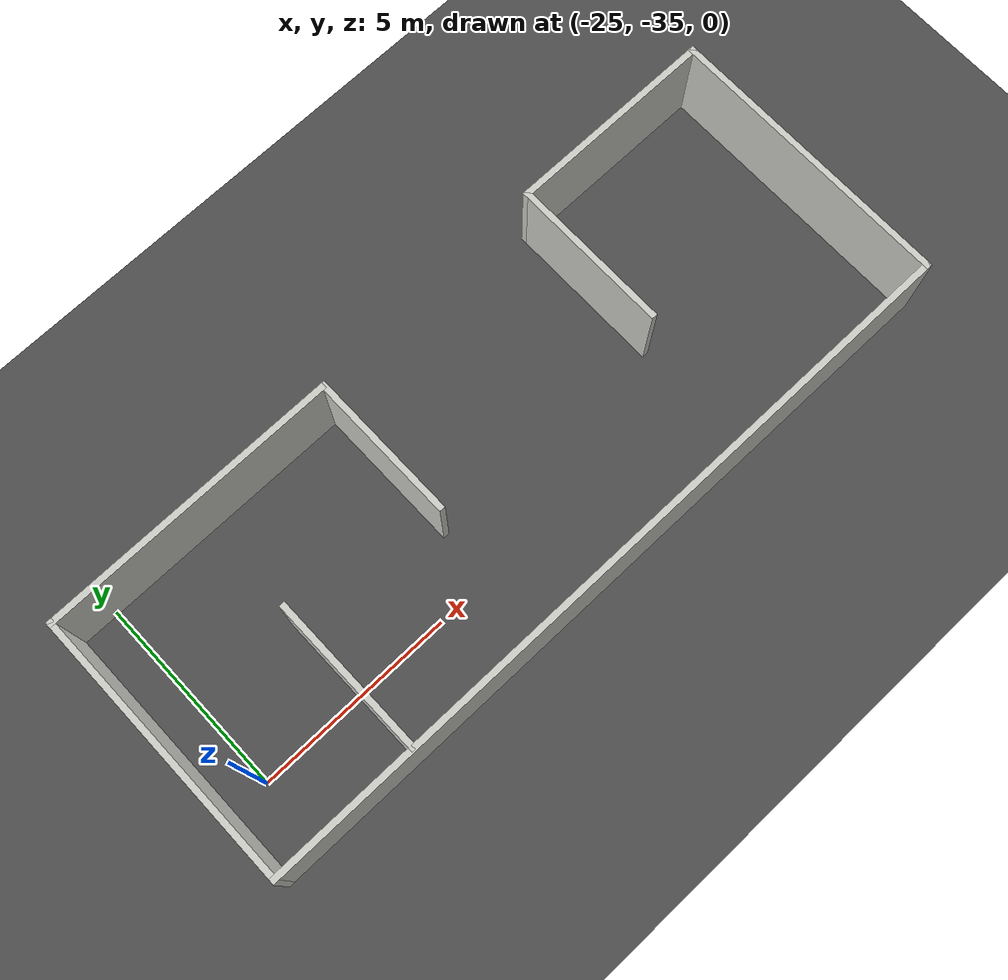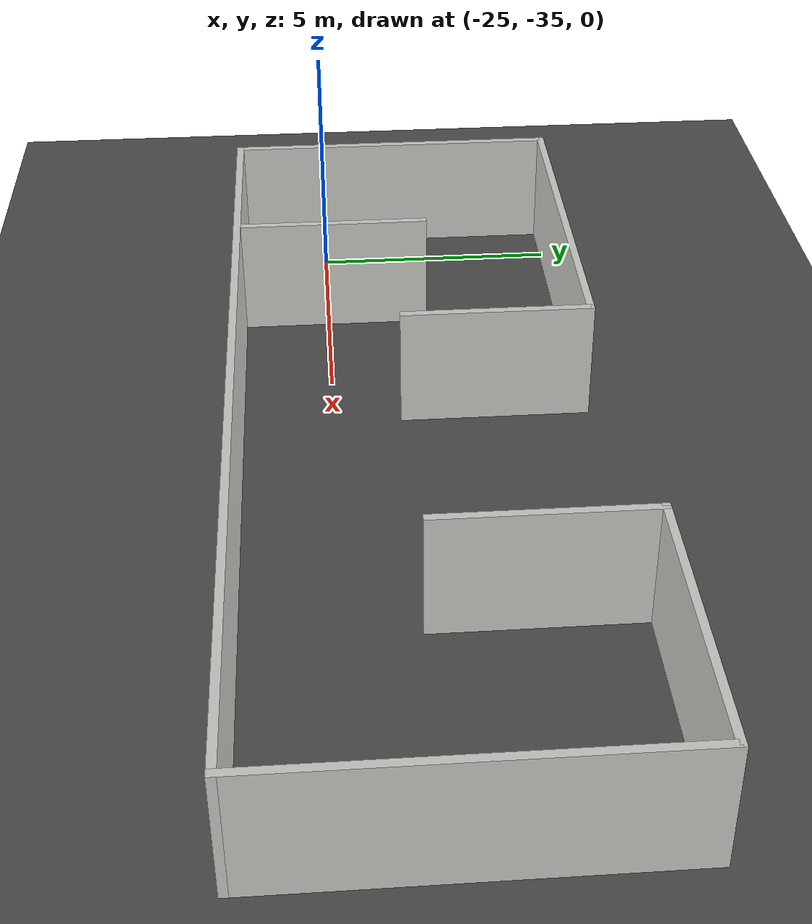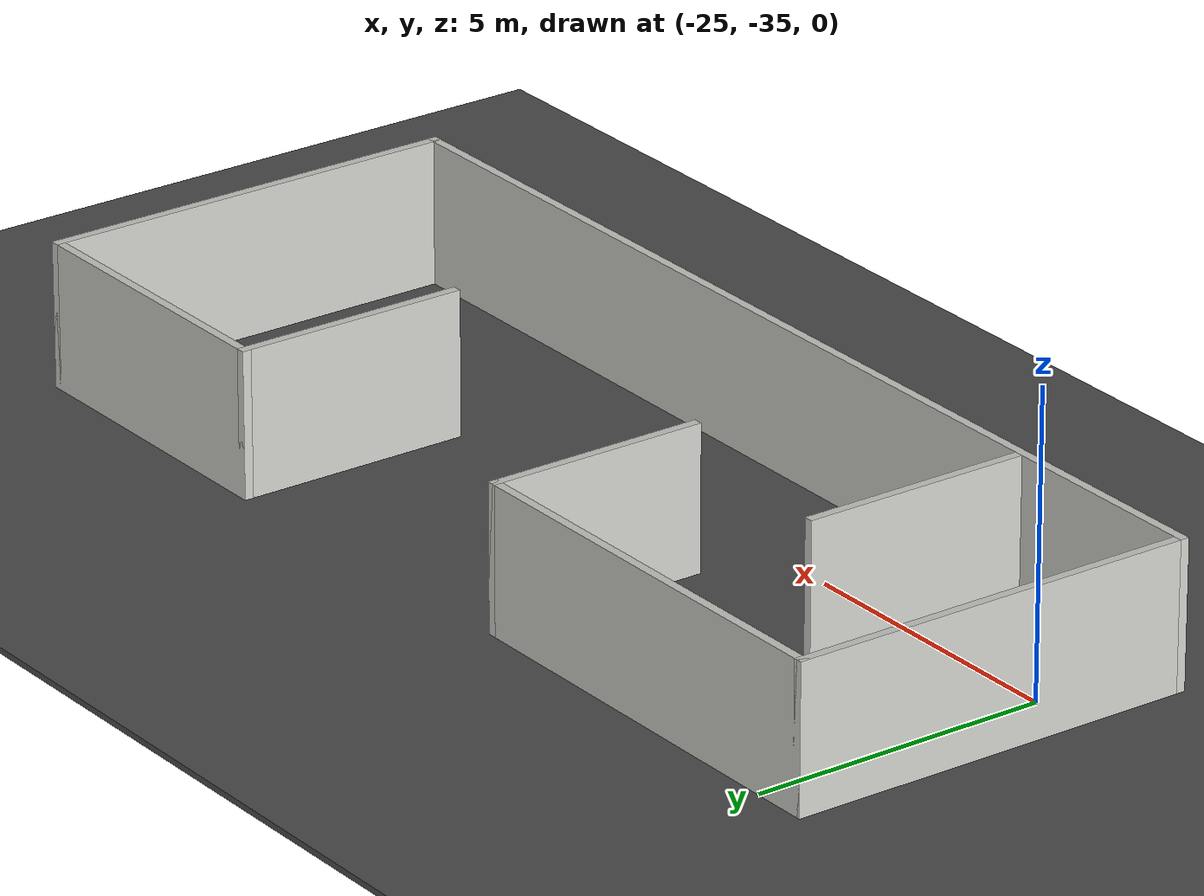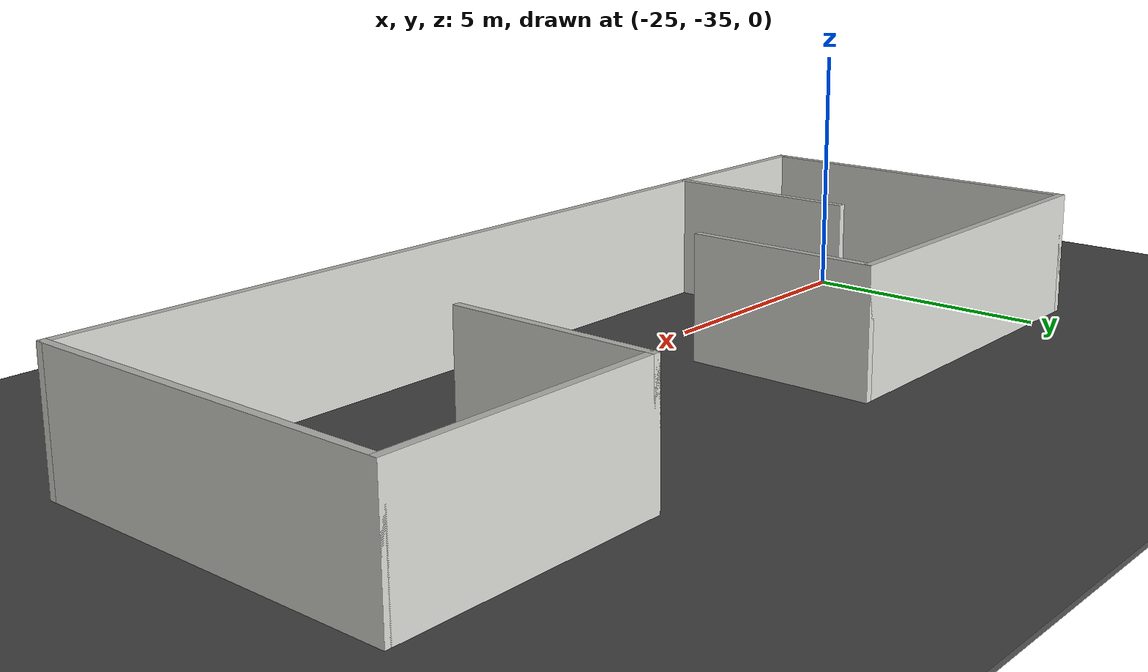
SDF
<sdf version="1.6">
 <world name="default">
  <model name="ground_plane">
   <static>1</static>
   <link name="link">
    <collision name="collision">
     <geometry><plane><normal>0 0 1</normal><size>200 200</size></plane></geometry>
     <surface><friction><ode><mu>100</mu><mu2>50</mu2></ode></friction></surface>
    </collision>
    <visual name="visual">
     <cast_shadows>0</cast_shadows>
     <geometry><plane><normal>0 0 1</normal><size>200 200</size></plane></geometry>
     <material>
      <script><uri>file://media/materials/scripts/gazebo.material</uri><name>Gazebo/Grey</name></script>
     </material>
    </visual>
   </link>
  </model>
  <model name="asphalt_plane">
   <static>1</static>
   <link name="link">
    <collision name="collision"><geometry><box><size>200 200 0.1</size></box></geometry></collision>
    <visual name="visual">
     <cast_shadows>0</cast_shadows>
     <geometry><box><size>200 200 0.1</size></box></geometry>
     <material>
      <script>
       <uri>model://asphalt_plane/materials/scripts</uri>
       <uri>model://asphalt_plane/materials/textures</uri>
       <name>vrc/asphalt</name>
      </script>
     </material>
    </visual>
   </link>
  </model>
  <model name="concrete_room2">
   <pose>-16.6663 -33.2911 0 0 -0 0</pose>
   <link name="Wall_61">
    <collision name="Wall_61_Collision">
     <geometry><box><size>5.25 0.15 2.5</size></box></geometry>
     <pose>0 0 1.25 0 -0 0</pose>
    </collision>
    <visual name="Wall_61_Visual">
     <pose>0 0 1.25 0 -0 0</pose>
     <geometry><box><size>5.25 0.15 2.5</size></box></geometry>
     <material>
      <script><uri>file://media/materials/scripts/gazebo.material</uri><name>Gazebo/CeilingTiled</name></script>
      <ambient>1 1 1 1</ambient>
     </material>
     <meta><layer>0</layer></meta>
    </visual>
    <pose>6.75 3.55 0 0 -0 0</pose>
   </link>
   <link name="Wall_62">
    <collision name="Wall_62_Collision">
     <geometry><box><size>7.25 0.15 2.5</size></box></geometry>
     <pose>0 0 1.25 0 -0 0</pose>
    </collision>
    <visual name="Wall_62_Visual">
     <pose>0 0 1.25 0 -0 0</pose>
     <geometry><box><size>7.25 0.15 2.5</size></box></geometry>
     <material>
      <script><uri>file://media/materials/scripts/gazebo.material</uri><name>Gazebo/CeilingTiled</name></script>
      <ambient>1 1 1 1</ambient>
     </material>
     <meta><layer>0</layer></meta>
    </visual>
    <pose>9.3 0 0 0 0 -1.5708</pose>
   </link>
   <link name="Wall_63">
    <collision name="Wall_63_Collision">
     <geometry><box><size>18.75 0.15 2.5</size></box></geometry>
     <pose>0 0 1.25 0 -0 0</pose>
    </collision>
    <visual name="Wall_63_Visual">
     <pose>0 0 1.25 0 -0 0</pose>
     <geometry><box><size>18.75 0.15 2.5</size></box></geometry>
     <material>
      <script><uri>file://media/materials/scripts/gazebo.material</uri><name>Gazebo/CeilingTiled</name></script>
      <ambient>1 1 1 1</ambient>
     </material>
     <meta><layer>0</layer></meta>
    </visual>
    <pose>0 -3.55 0 0 -0 3.14159</pose>
   </link>
   <link name="Wall_64">
    <collision name="Wall_64_Collision">
     <geometry><box><size>7 0.15 2.5</size></box></geometry>
     <pose>0 0 1.25 0 -0 0</pose>
    </collision>
    <visual name="Wall_64_Visual">
     <pose>0 0 1.25 0 -0 0</pose>
     <geometry><box><size>7 0.15 2.5</size></box></geometry>
     <material>
      <script><uri>file://media/materials/scripts/gazebo.material</uri><name>Gazebo/CeilingTiled</name></script>
      <ambient>1 1 1 1</ambient>
     </material>
     <meta><layer>0</layer></meta>
    </visual>
    <pose>-9.3 -0.125 0 0 -0 1.5708</pose>
   </link>
   <link name="Wall_65">
    <collision name="Wall_65_Collision">
     <geometry><box><size>7.5 0.15 2.5</size></box></geometry>
     <pose>0 0 1.25 0 -0 0</pose>
    </collision>
    <visual name="Wall_65_Visual">
     <pose>0 0 1.25 0 -0 0</pose>
     <geometry><box><size>7.5 0.15 2.5</size></box></geometry>
     <material>
      <script><uri>file://media/materials/scripts/gazebo.material</uri><name>Gazebo/CeilingTiled</name></script>
      <ambient>1 1 1 1</ambient>
     </material>
     <meta><layer>0</layer></meta>
    </visual>
    <pose>-5.625 3.3 0 0 -0 0</pose>
   </link>
   <link name="Wall_66">
    <collision name="Wall_66_Collision">
     <geometry><box><size>3.75 0.15 2.5</size></box></geometry>
     <pose>0 0 1.25 0 -0 0</pose>
    </collision>
    <visual name="Wall_66_Visual">
     <pose>0 0 1.25 0 -0 0</pose>
     <geometry><box><size>3.75 0.15 2.5</size></box></geometry>
     <material>
      <script><uri>file://media/materials/scripts/gazebo.material</uri><name>Gazebo/CeilingTiled</name></script>
      <ambient>1 1 1 1</ambient>
     </material>
     <meta><layer>0</layer></meta>
    </visual>
    <pose>-1.95 1.5 0 0 0 -1.5708</pose>
   </link>
   <link name="Wall_70">
    <collision name="Wall_70_Collision">
     <geometry><box><size>4 0.15 2.5</size></box></geometry>
     <pose>0 0 1.25 0 -0 0</pose>
    </collision>
    <visual name="Wall_70_Visual">
     <pose>0 0 1.25 0 -0 0</pose>
     <geometry><box><size>4 0.15 2.5</size></box></geometry>
     <material>
      <script><uri>file://media/materials/scripts/gazebo.material</uri><name>Gazebo/CeilingTiled</name></script>
      <ambient>1 1 1 1</ambient>
     </material>
     <meta><layer>0</layer></meta>
    </visual>
    <pose>4.2 1.625 0 0 0 -1.5708</pose>
   </link>
   <link name="Wall_72">
    <collision name="Wall_72_Collision">
     <geometry><box><size>4 0.15 2.5</size></box></geometry>
     <pose>0 0 1.25 0 -0 0</pose>
    </collision>
    <visual name="Wall_72_Visual">
     <pose>0 0 1.25 0 -0 0</pose>
     <geometry><box><size>4 0.15 2.5</size></box></geometry>
     <material>
      <script><uri>file://media/materials/scripts/gazebo.material</uri><name>Gazebo/CeilingTiled</name></script>
      <ambient>1 1 1 1</ambient>
     </material>
     <meta><layer>0</layer></meta>
    </visual>
    <pose>-5.65005 -1.59593 0 0 -0 1.5708</pose>
   </link>
   <static>1</static>
  </model>
 </world>
</sdf>
